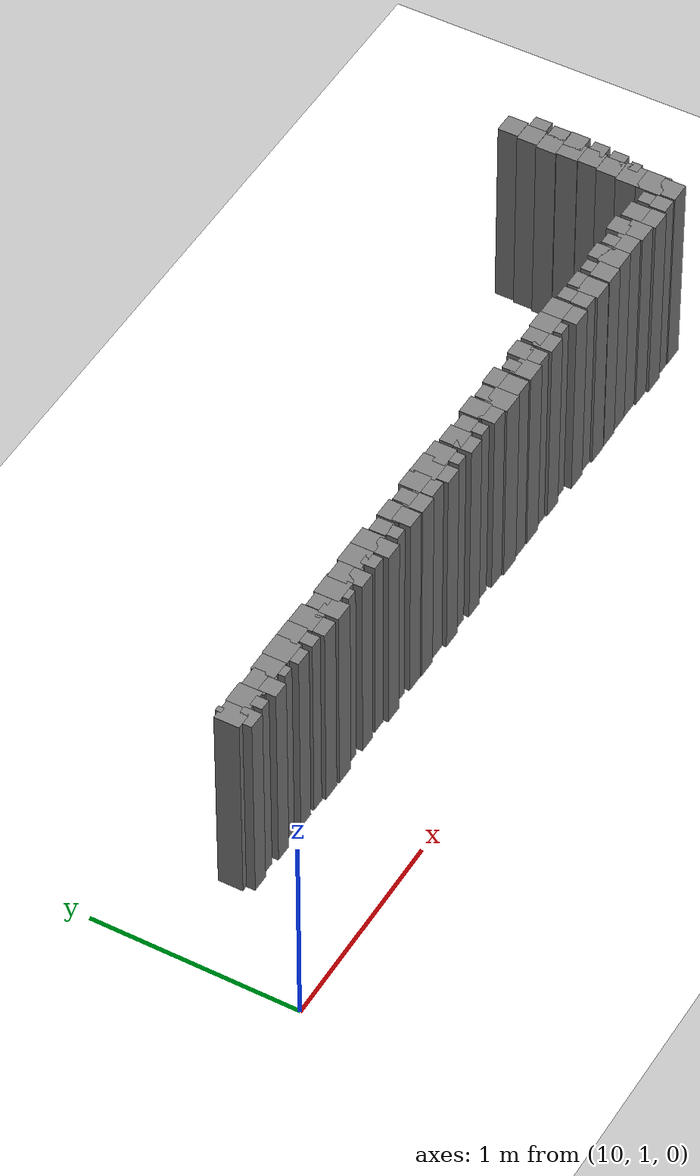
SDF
<sdf version="1.6">
 <world name="default">
  <model name="group_282">
   <pose>10.51 1.53 0.5 0 0 0</pose>
   <static>true</static>
   <link name="link">
    <collision name="collision">
     <geometry><box><size>0.0844207576746406 0.0844207576746406 1</size></box></geometry>
    </collision>
    <visual name="visual">
     <geometry><box><size>0.0844207576746406 0.0844207576746406 1</size></box></geometry>
     <material><ambient>0.5 0.5 0.5 1</ambient></material>
    </visual>
   </link>
  </model>
  <model name="group_283">
   <pose>10.50 1.59 0.5 0 0 0</pose>
   <static>true</static>
   <link name="link">
    <collision name="collision">
     <geometry><box><size>0.1188431077718544 0.1188431077718544 1</size></box></geometry>
    </collision>
    <visual name="visual">
     <geometry><box><size>0.1188431077718544 0.1188431077718544 1</size></box></geometry>
     <material><ambient>0.5 0.5 0.5 1</ambient></material>
    </visual>
   </link>
  </model>
  <model name="group_284">
   <pose>10.49 1.65 0.5 0 0 0</pose>
   <static>true</static>
   <link name="link">
    <collision name="collision">
     <geometry><box><size>0.02814025255821355 0.02814025255821355 1</size></box></geometry>
    </collision>
    <visual name="visual">
     <geometry><box><size>0.02814025255821355 0.02814025255821355 1</size></box></geometry>
     <material><ambient>0.5 0.5 0.5 1</ambient></material>
    </visual>
   </link>
  </model>
  <model name="group_287">
   <pose>10.60 1.60 0.5 0 0 0</pose>
   <static>true</static>
   <link name="link">
    <collision name="collision">
     <geometry><box><size>0.11145209213377257 0.11145209213377257 1</size></box></geometry>
    </collision>
    <visual name="visual">
     <geometry><box><size>0.11145209213377257 0.11145209213377257 1</size></box></geometry>
     <material><ambient>0.5 0.5 0.5 1</ambient></material>
    </visual>
   </link>
  </model>
  <model name="group_288">
   <pose>10.60 1.53 0.5 0 0 0</pose>
   <static>true</static>
   <link name="link">
    <collision name="collision">
     <geometry><box><size>0.05628050511642709 0.05628050511642709 1</size></box></geometry>
    </collision>
    <visual name="visual">
     <geometry><box><size>0.05628050511642709 0.05628050511642709 1</size></box></geometry>
     <material><ambient>0.5 0.5 0.5 1</ambient></material>
    </visual>
   </link>
  </model>
  <model name="group_291">
   <pose>10.70 1.53 0.5 0 0 0</pose>
   <static>true</static>
   <link name="link">
    <collision name="collision">
     <geometry><box><size>0.08442075767464413 0.08442075767464413 1</size></box></geometry>
    </collision>
    <visual name="visual">
     <geometry><box><size>0.08442075767464413 0.08442075767464413 1</size></box></geometry>
     <material><ambient>0.5 0.5 0.5 1</ambient></material>
    </visual>
   </link>
  </model>
  <model name="group_292">
   <pose>10.70 1.59 0.5 0 0 0</pose>
   <static>true</static>
   <link name="link">
    <collision name="collision">
     <geometry><box><size>0.11218382099302741 0.11218382099302741 1</size></box></geometry>
    </collision>
    <visual name="visual">
     <geometry><box><size>0.11218382099302741 0.11218382099302741 1</size></box></geometry>
     <material><ambient>0.5 0.5 0.5 1</ambient></material>
    </visual>
   </link>
  </model>
  <model name="group_295">
   <pose>10.80 1.60 0.5 0 0 0</pose>
   <static>true</static>
   <link name="link">
    <collision name="collision">
     <geometry><box><size>0.11218382099302664 0.11218382099302664 1</size></box></geometry>
    </collision>
    <visual name="visual">
     <geometry><box><size>0.11218382099302664 0.11218382099302664 1</size></box></geometry>
     <material><ambient>0.5 0.5 0.5 1</ambient></material>
    </visual>
   </link>
  </model>
  <model name="group_296">
   <pose>10.80 1.54 0.5 0 0 0</pose>
   <static>true</static>
   <link name="link">
    <collision name="collision">
     <geometry><box><size>0.0562805051164306 0.0562805051164306 1</size></box></geometry>
    </collision>
    <visual name="visual">
     <geometry><box><size>0.0562805051164306 0.0562805051164306 1</size></box></geometry>
     <material><ambient>0.5 0.5 0.5 1</ambient></material>
    </visual>
   </link>
  </model>
  <model name="group_300">
   <pose>10.90 1.54 0.5 0 0 0</pose>
   <static>true</static>
   <link name="link">
    <collision name="collision">
     <geometry><box><size>0.0844207576746406 0.0844207576746406 1</size></box></geometry>
    </collision>
    <visual name="visual">
     <geometry><box><size>0.0844207576746406 0.0844207576746406 1</size></box></geometry>
     <material><ambient>0.5 0.5 0.5 1</ambient></material>
    </visual>
   </link>
  </model>
  <model name="group_301">
   <pose>10.90 1.60 0.5 0 0 0</pose>
   <static>true</static>
   <link name="link">
    <collision name="collision">
     <geometry><box><size>0.11941295585761355 0.11941295585761355 1</size></box></geometry>
    </collision>
    <visual name="visual">
     <geometry><box><size>0.11941295585761355 0.11941295585761355 1</size></box></geometry>
     <material><ambient>0.5 0.5 0.5 1</ambient></material>
    </visual>
   </link>
  </model>
  <model name="group_305">
   <pose>11.00 1.53 0.5 0 0 0</pose>
   <static>true</static>
   <link name="link">
    <collision name="collision">
     <geometry><box><size>0.06413786030771713 0.06413786030771713 1</size></box></geometry>
    </collision>
    <visual name="visual">
     <geometry><box><size>0.06413786030771713 0.06413786030771713 1</size></box></geometry>
     <material><ambient>0.5 0.5 0.5 1</ambient></material>
    </visual>
   </link>
  </model>
  <model name="group_306">
   <pose>11.00 1.61 0.5 0 0 0</pose>
   <static>true</static>
   <link name="link">
    <collision name="collision">
     <geometry><box><size>0.09919226406567094 0.09919226406567094 1</size></box></geometry>
    </collision>
    <visual name="visual">
     <geometry><box><size>0.09919226406567094 0.09919226406567094 1</size></box></geometry>
     <material><ambient>0.5 0.5 0.5 1</ambient></material>
    </visual>
   </link>
  </model>
  <model name="group_309">
   <pose>11.09 1.53 0.5 0 0 0</pose>
   <static>true</static>
   <link name="link">
    <collision name="collision">
     <geometry><box><size>0.09070112511455711 0.09070112511455711 1</size></box></geometry>
    </collision>
    <visual name="visual">
     <geometry><box><size>0.09070112511455711 0.09070112511455711 1</size></box></geometry>
     <material><ambient>0.5 0.5 0.5 1</ambient></material>
    </visual>
   </link>
  </model>
  <model name="group_310">
   <pose>11.10 1.60 0.5 0 0 0</pose>
   <static>true</static>
   <link name="link">
    <collision name="collision">
     <geometry><box><size>0.11493900367021977 0.11493900367021977 1</size></box></geometry>
    </collision>
    <visual name="visual">
     <geometry><box><size>0.11493900367021977 0.11493900367021977 1</size></box></geometry>
     <material><ambient>0.5 0.5 0.5 1</ambient></material>
    </visual>
   </link>
  </model>
  <model name="group_313">
   <pose>11.20 1.53 0.5 0 0 0</pose>
   <static>true</static>
   <link name="link">
    <collision name="collision">
     <geometry><box><size>0.09657300224092963 0.09657300224092963 1</size></box></geometry>
    </collision>
    <visual name="visual">
     <geometry><box><size>0.09657300224092963 0.09657300224092963 1</size></box></geometry>
     <material><ambient>0.5 0.5 0.5 1</ambient></material>
    </visual>
   </link>
  </model>
  <model name="group_314">
   <pose>11.20 1.60 0.5 0 0 0</pose>
   <static>true</static>
   <link name="link">
    <collision name="collision">
     <geometry><box><size>0.07960863723840723 0.07960863723840723 1</size></box></geometry>
    </collision>
    <visual name="visual">
     <geometry><box><size>0.07960863723840723 0.07960863723840723 1</size></box></geometry>
     <material><ambient>0.5 0.5 0.5 1</ambient></material>
    </visual>
   </link>
  </model>
  <model name="group_317">
   <pose>11.30 1.59 0.5 0 0 0</pose>
   <static>true</static>
   <link name="link">
    <collision name="collision">
     <geometry><box><size>0.11941295585761384 0.11941295585761384 1</size></box></geometry>
    </collision>
    <visual name="visual">
     <geometry><box><size>0.11941295585761384 0.11941295585761384 1</size></box></geometry>
     <material><ambient>0.5 0.5 0.5 1</ambient></material>
    </visual>
   </link>
  </model>
  <model name="group_318">
   <pose>11.30 1.53 0.5 0 0 0</pose>
   <static>true</static>
   <link name="link">
    <collision name="collision">
     <geometry><box><size>0.05628050511642709 0.05628050511642709 1</size></box></geometry>
    </collision>
    <visual name="visual">
     <geometry><box><size>0.05628050511642709 0.05628050511642709 1</size></box></geometry>
     <material><ambient>0.5 0.5 0.5 1</ambient></material>
    </visual>
   </link>
  </model>
  <model name="group_321">
   <pose>11.40 1.53 0.5 0 0 0</pose>
   <static>true</static>
   <link name="link">
    <collision name="collision">
     <geometry><box><size>0.08442075767464416 0.08442075767464416 1</size></box></geometry>
    </collision>
    <visual name="visual">
     <geometry><box><size>0.08442075767464416 0.08442075767464416 1</size></box></geometry>
     <material><ambient>0.5 0.5 0.5 1</ambient></material>
    </visual>
   </link>
  </model>
  <model name="group_322">
   <pose>11.40 1.59 0.5 0 0 0</pose>
   <static>true</static>
   <link name="link">
    <collision name="collision">
     <geometry><box><size>0.11218382099302926 0.11218382099302926 1</size></box></geometry>
    </collision>
    <visual name="visual">
     <geometry><box><size>0.11218382099302926 0.11218382099302926 1</size></box></geometry>
     <material><ambient>0.5 0.5 0.5 1</ambient></material>
    </visual>
   </link>
  </model>
  <model name="group_325">
   <pose>11.50 1.60 0.5 0 0 0</pose>
   <static>true</static>
   <link name="link">
    <collision name="collision">
     <geometry><box><size>0.11218382099302819 0.11218382099302819 1</size></box></geometry>
    </collision>
    <visual name="visual">
     <geometry><box><size>0.11218382099302819 0.11218382099302819 1</size></box></geometry>
     <material><ambient>0.5 0.5 0.5 1</ambient></material>
    </visual>
   </link>
  </model>
  <model name="group_326">
   <pose>11.51 1.53 0.5 0 0 0</pose>
   <static>true</static>
   <link name="link">
    <collision name="collision">
     <geometry><box><size>0.07012024655144633 0.07012024655144633 1</size></box></geometry>
    </collision>
    <visual name="visual">
     <geometry><box><size>0.07012024655144633 0.07012024655144633 1</size></box></geometry>
     <material><ambient>0.5 0.5 0.5 1</ambient></material>
    </visual>
   </link>
  </model>
  <model name="group_330">
   <pose>11.60 1.52 0.5 0 0 0</pose>
   <static>true</static>
   <link name="link">
    <collision name="collision">
     <geometry><box><size>0.09070112511455346 0.09070112511455346 1</size></box></geometry>
    </collision>
    <visual name="visual">
     <geometry><box><size>0.09070112511455346 0.09070112511455346 1</size></box></geometry>
     <material><ambient>0.5 0.5 0.5 1</ambient></material>
    </visual>
   </link>
  </model>
  <model name="group_331">
   <pose>11.60 1.60 0.5 0 0 0</pose>
   <static>true</static>
   <link name="link">
    <collision name="collision">
     <geometry><box><size>0.11145209213376872 0.11145209213376872 1</size></box></geometry>
    </collision>
    <visual name="visual">
     <geometry><box><size>0.11145209213376872 0.11145209213376872 1</size></box></geometry>
     <material><ambient>0.5 0.5 0.5 1</ambient></material>
    </visual>
   </link>
  </model>
  <model name="group_334">
   <pose>11.70 1.53 0.5 0 0 0</pose>
   <static>true</static>
   <link name="link">
    <collision name="collision">
     <geometry><box><size>0.06413786030771981 0.06413786030771981 1</size></box></geometry>
    </collision>
    <visual name="visual">
     <geometry><box><size>0.06413786030771981 0.06413786030771981 1</size></box></geometry>
     <material><ambient>0.5 0.5 0.5 1</ambient></material>
    </visual>
   </link>
  </model>
  <model name="group_335">
   <pose>11.70 1.59 0.5 0 0 0</pose>
   <static>true</static>
   <link name="link">
    <collision name="collision">
     <geometry><box><size>0.07960863723840993 0.07960863723840993 1</size></box></geometry>
    </collision>
    <visual name="visual">
     <geometry><box><size>0.07960863723840993 0.07960863723840993 1</size></box></geometry>
     <material><ambient>0.5 0.5 0.5 1</ambient></material>
    </visual>
   </link>
  </model>
  <model name="group_338">
   <pose>11.80 1.53 0.5 0 0 0</pose>
   <static>true</static>
   <link name="link">
    <collision name="collision">
     <geometry><box><size>0.09070112511455033 0.09070112511455033 1</size></box></geometry>
    </collision>
    <visual name="visual">
     <geometry><box><size>0.09070112511455033 0.09070112511455033 1</size></box></geometry>
     <material><ambient>0.5 0.5 0.5 1</ambient></material>
    </visual>
   </link>
  </model>
  <model name="group_339">
   <pose>11.80 1.59 0.5 0 0 0</pose>
   <static>true</static>
   <link name="link">
    <collision name="collision">
     <geometry><box><size>0.10297681291020666 0.10297681291020666 1</size></box></geometry>
    </collision>
    <visual name="visual">
     <geometry><box><size>0.10297681291020666 0.10297681291020666 1</size></box></geometry>
     <material><ambient>0.5 0.5 0.5 1</ambient></material>
    </visual>
   </link>
  </model>
  <model name="group_342">
   <pose>11.90 1.53 0.5 0 0 0</pose>
   <static>true</static>
   <link name="link">
    <collision name="collision">
     <geometry><box><size>0.0965730022409327 0.0965730022409327 1</size></box></geometry>
    </collision>
    <visual name="visual">
     <geometry><box><size>0.0965730022409327 0.0965730022409327 1</size></box></geometry>
     <material><ambient>0.5 0.5 0.5 1</ambient></material>
    </visual>
   </link>
  </model>
  <model name="group_343">
   <pose>11.90 1.59 0.5 0 0 0</pose>
   <static>true</static>
   <link name="link">
    <collision name="collision">
     <geometry><box><size>0.07960863723840934 0.07960863723840934 1</size></box></geometry>
    </collision>
    <visual name="visual">
     <geometry><box><size>0.07960863723840934 0.07960863723840934 1</size></box></geometry>
     <material><ambient>0.5 0.5 0.5 1</ambient></material>
    </visual>
   </link>
  </model>
  <model name="group_346">
   <pose>12.00 1.54 0.5 0 0 0</pose>
   <static>true</static>
   <link name="link">
    <collision name="collision">
     <geometry><box><size>0.09657300224092946 0.09657300224092946 1</size></box></geometry>
    </collision>
    <visual name="visual">
     <geometry><box><size>0.09657300224092946 0.09657300224092946 1</size></box></geometry>
     <material><ambient>0.5 0.5 0.5 1</ambient></material>
    </visual>
   </link>
  </model>
  <model name="group_347">
   <pose>12.00 1.60 0.5 0 0 0</pose>
   <static>true</static>
   <link name="link">
    <collision name="collision">
     <geometry><box><size>0.10297681291020315 0.10297681291020315 1</size></box></geometry>
    </collision>
    <visual name="visual">
     <geometry><box><size>0.10297681291020315 0.10297681291020315 1</size></box></geometry>
     <material><ambient>0.5 0.5 0.5 1</ambient></material>
    </visual>
   </link>
  </model>
  <model name="group_351">
   <pose>12.10 1.52 0.5 0 0 0</pose>
   <static>true</static>
   <link name="link">
    <collision name="collision">
     <geometry><box><size>0.09398811657741322 0.09398811657741322 1</size></box></geometry>
    </collision>
    <visual name="visual">
     <geometry><box><size>0.09398811657741322 0.09398811657741322 1</size></box></geometry>
     <material><ambient>0.5 0.5 0.5 1</ambient></material>
    </visual>
   </link>
  </model>
  <model name="group_352">
   <pose>12.10 1.59 0.5 0 0 0</pose>
   <static>true</static>
   <link name="link">
    <collision name="collision">
     <geometry><box><size>0.12064594486191331 0.12064594486191331 1</size></box></geometry>
    </collision>
    <visual name="visual">
     <geometry><box><size>0.12064594486191331 0.12064594486191331 1</size></box></geometry>
     <material><ambient>0.5 0.5 0.5 1</ambient></material>
    </visual>
   </link>
  </model>
  <model name="group_355">
   <pose>12.19 1.59 0.5 0 0 0</pose>
   <static>true</static>
   <link name="link">
    <collision name="collision">
     <geometry><box><size>0.10946767640596061 0.10946767640596061 1</size></box></geometry>
    </collision>
    <visual name="visual">
     <geometry><box><size>0.10946767640596061 0.10946767640596061 1</size></box></geometry>
     <material><ambient>0.5 0.5 0.5 1</ambient></material>
    </visual>
   </link>
  </model>
  <model name="group_358">
   <pose>12.20 1.52 0.5 0 0 0</pose>
   <static>true</static>
   <link name="link">
    <collision name="collision">
     <geometry><box><size>0.06413786030771677 0.06413786030771677 1</size></box></geometry>
    </collision>
    <visual name="visual">
     <geometry><box><size>0.06413786030771677 0.06413786030771677 1</size></box></geometry>
     <material><ambient>0.5 0.5 0.5 1</ambient></material>
    </visual>
   </link>
  </model>
  <model name="group_359">
   <pose>12.30 1.52 0.5 0 0 0</pose>
   <static>true</static>
   <link name="link">
    <collision name="collision">
     <geometry><box><size>0.09070112511455033 0.09070112511455033 1</size></box></geometry>
    </collision>
    <visual name="visual">
     <geometry><box><size>0.09070112511455033 0.09070112511455033 1</size></box></geometry>
     <material><ambient>0.5 0.5 0.5 1</ambient></material>
    </visual>
   </link>
  </model>
  <model name="group_360">
   <pose>12.31 1.58 0.5 0 0 0</pose>
   <static>true</static>
   <link name="link">
    <collision name="collision">
     <geometry><box><size>0.10297681291020407 0.10297681291020407 1</size></box></geometry>
    </collision>
    <visual name="visual">
     <geometry><box><size>0.10297681291020407 0.10297681291020407 1</size></box></geometry>
     <material><ambient>0.5 0.5 0.5 1</ambient></material>
    </visual>
   </link>
  </model>
  <model name="group_365">
   <pose>12.40 1.52 0.5 0 0 0</pose>
   <static>true</static>
   <link name="link">
    <collision name="collision">
     <geometry><box><size>0.06413786030771962 0.06413786030771962 1</size></box></geometry>
    </collision>
    <visual name="visual">
     <geometry><box><size>0.06413786030771962 0.06413786030771962 1</size></box></geometry>
     <material><ambient>0.5 0.5 0.5 1</ambient></material>
    </visual>
   </link>
  </model>
  <model name="group_366">
   <pose>12.40 1.58 0.5 0 0 0</pose>
   <static>true</static>
   <link name="link">
    <collision name="collision">
     <geometry><box><size>0.07960863723840934 0.07960863723840934 1</size></box></geometry>
    </collision>
    <visual name="visual">
     <geometry><box><size>0.07960863723840934 0.07960863723840934 1</size></box></geometry>
     <material><ambient>0.5 0.5 0.5 1</ambient></material>
    </visual>
   </link>
  </model>
  <model name="group_367">
   <pose>12.50 1.52 0.5 0 0 0</pose>
   <static>true</static>
   <link name="link">
    <collision name="collision">
     <geometry><box><size>0.09070112511455047 0.09070112511455047 1</size></box></geometry>
    </collision>
    <visual name="visual">
     <geometry><box><size>0.09070112511455047 0.09070112511455047 1</size></box></geometry>
     <material><ambient>0.5 0.5 0.5 1</ambient></material>
    </visual>
   </link>
  </model>
  <model name="group_368">
   <pose>12.50 1.59 0.5 0 0 0</pose>
   <static>true</static>
   <link name="link">
    <collision name="collision">
     <geometry><box><size>0.10297681291020125 0.10297681291020125 1</size></box></geometry>
    </collision>
    <visual name="visual">
     <geometry><box><size>0.10297681291020125 0.10297681291020125 1</size></box></geometry>
     <material><ambient>0.5 0.5 0.5 1</ambient></material>
    </visual>
   </link>
  </model>
  <model name="group_374">
   <pose>12.60 1.52 0.5 0 0 0</pose>
   <static>true</static>
   <link name="link">
    <collision name="collision">
     <geometry><box><size>0.11035431435957836 0.11035431435957836 1</size></box></geometry>
    </collision>
    <visual name="visual">
     <geometry><box><size>0.11035431435957836 0.11035431435957836 1</size></box></geometry>
     <material><ambient>0.5 0.5 0.5 1</ambient></material>
    </visual>
   </link>
  </model>
  <model name="group_375">
   <pose>12.60 1.59 0.5 0 0 0</pose>
   <static>true</static>
   <link name="link">
    <collision name="collision">
     <geometry><box><size>0.0796086372384084 0.0796086372384084 1</size></box></geometry>
    </collision>
    <visual name="visual">
     <geometry><box><size>0.0796086372384084 0.0796086372384084 1</size></box></geometry>
     <material><ambient>0.5 0.5 0.5 1</ambient></material>
    </visual>
   </link>
  </model>
  <model name="group_376">
   <pose>12.70 1.52 0.5 0 0 0</pose>
   <static>true</static>
   <link name="link">
    <collision name="collision">
     <geometry><box><size>0.09838251202874101 0.09838251202874101 1</size></box></geometry>
    </collision>
    <visual name="visual">
     <geometry><box><size>0.09838251202874101 0.09838251202874101 1</size></box></geometry>
     <material><ambient>0.5 0.5 0.5 1</ambient></material>
    </visual>
   </link>
  </model>
  <model name="group_377">
   <pose>12.70 1.59 0.5 0 0 0</pose>
   <static>true</static>
   <link name="link">
    <collision name="collision">
     <geometry><box><size>0.10297681291020101 0.10297681291020101 1</size></box></geometry>
    </collision>
    <visual name="visual">
     <geometry><box><size>0.10297681291020101 0.10297681291020101 1</size></box></geometry>
     <material><ambient>0.5 0.5 0.5 1</ambient></material>
    </visual>
   </link>
  </model>
  <model name="group_382">
   <pose>12.81 1.52 0.5 0 0 0</pose>
   <static>true</static>
   <link name="link">
    <collision name="collision">
     <geometry><box><size>0.10297681291020644 0.10297681291020644 1</size></box></geometry>
    </collision>
    <visual name="visual">
     <geometry><box><size>0.10297681291020644 0.10297681291020644 1</size></box></geometry>
     <material><ambient>0.5 0.5 0.5 1</ambient></material>
    </visual>
   </link>
  </model>
  <model name="group_383">
   <pose>12.80 1.58 0.5 0 0 0</pose>
   <static>true</static>
   <link name="link">
    <collision name="collision">
     <geometry><box><size>0.06413786030771658 0.06413786030771658 1</size></box></geometry>
    </collision>
    <visual name="visual">
     <geometry><box><size>0.06413786030771658 0.06413786030771658 1</size></box></geometry>
     <material><ambient>0.5 0.5 0.5 1</ambient></material>
    </visual>
   </link>
  </model>
  <model name="group_384">
   <pose>12.90 1.59 0.5 0 0 0</pose>
   <static>true</static>
   <link name="link">
    <collision name="collision">
     <geometry><box><size>0.09070112511455075 0.09070112511455075 1</size></box></geometry>
    </collision>
    <visual name="visual">
     <geometry><box><size>0.09070112511455075 0.09070112511455075 1</size></box></geometry>
     <material><ambient>0.5 0.5 0.5 1</ambient></material>
    </visual>
   </link>
  </model>
  <model name="group_387">
   <pose>12.90 1.52 0.5 0 0 0</pose>
   <static>true</static>
   <link name="link">
    <collision name="collision">
     <geometry><box><size>0.07960863723841022 0.07960863723841022 1</size></box></geometry>
    </collision>
    <visual name="visual">
     <geometry><box><size>0.07960863723841022 0.07960863723841022 1</size></box></geometry>
     <material><ambient>0.5 0.5 0.5 1</ambient></material>
    </visual>
   </link>
  </model>
  <model name="group_390">
   <pose>13.00 1.52 0.5 0 0 0</pose>
   <static>true</static>
   <link name="link">
    <collision name="collision">
     <geometry><box><size>0.09707727718031758 0.09707727718031758 1</size></box></geometry>
    </collision>
    <visual name="visual">
     <geometry><box><size>0.09707727718031758 0.09707727718031758 1</size></box></geometry>
     <material><ambient>0.5 0.5 0.5 1</ambient></material>
    </visual>
   </link>
  </model>
  <model name="group_391">
   <pose>13.01 1.58 0.5 0 0 0</pose>
   <static>true</static>
   <link name="link">
    <collision name="collision">
     <geometry><box><size>0.09359650192837145 0.09359650192837145 1</size></box></geometry>
    </collision>
    <visual name="visual">
     <geometry><box><size>0.09359650192837145 0.09359650192837145 1</size></box></geometry>
     <material><ambient>0.5 0.5 0.5 1</ambient></material>
    </visual>
   </link>
  </model>
  <model name="group_392">
   <pose>13.10 1.58 0.5 0 0 0</pose>
   <static>true</static>
   <link name="link">
    <collision name="collision">
     <geometry><box><size>0.10647461046977892 0.10647461046977892 1</size></box></geometry>
    </collision>
    <visual name="visual">
     <geometry><box><size>0.10647461046977892 0.10647461046977892 1</size></box></geometry>
     <material><ambient>0.5 0.5 0.5 1</ambient></material>
    </visual>
   </link>
  </model>
  <model name="group_395">
   <pose>13.10 1.52 0.5 0 0 0</pose>
   <static>true</static>
   <link name="link">
    <collision name="collision">
     <geometry><box><size>0.06413786030772321 0.06413786030772321 1</size></box></geometry>
    </collision>
    <visual name="visual">
     <geometry><box><size>0.06413786030772321 0.06413786030772321 1</size></box></geometry>
     <material><ambient>0.5 0.5 0.5 1</ambient></material>
    </visual>
   </link>
  </model>
  <model name="group_399">
   <pose>13.20 1.51 0.5 0 0 0</pose>
   <static>true</static>
   <link name="link">
    <collision name="collision">
     <geometry><box><size>0.09976776828770342 0.09976776828770342 1</size></box></geometry>
    </collision>
    <visual name="visual">
     <geometry><box><size>0.09976776828770342 0.09976776828770342 1</size></box></geometry>
     <material><ambient>0.5 0.5 0.5 1</ambient></material>
    </visual>
   </link>
  </model>
  <model name="group_400">
   <pose>13.20 1.58 0.5 0 0 0</pose>
   <static>true</static>
   <link name="link">
    <collision name="collision">
     <geometry><box><size>0.10297681291020644 0.10297681291020644 1</size></box></geometry>
    </collision>
    <visual name="visual">
     <geometry><box><size>0.10297681291020644 0.10297681291020644 1</size></box></geometry>
     <material><ambient>0.5 0.5 0.5 1</ambient></material>
    </visual>
   </link>
  </model>
  <model name="group_404">
   <pose>13.30 1.51 0.5 0 0 0</pose>
   <static>true</static>
   <link name="link">
    <collision name="collision">
     <geometry><box><size>0.07960863723841291 0.07960863723841291 1</size></box></geometry>
    </collision>
    <visual name="visual">
     <geometry><box><size>0.07960863723841291 0.07960863723841291 1</size></box></geometry>
     <material><ambient>0.5 0.5 0.5 1</ambient></material>
    </visual>
   </link>
  </model>
  <model name="group_405">
   <pose>13.30 1.58 0.5 0 0 0</pose>
   <static>true</static>
   <link name="link">
    <collision name="collision">
     <geometry><box><size>0.07321409456274304 0.07321409456274304 1</size></box></geometry>
    </collision>
    <visual name="visual">
     <geometry><box><size>0.07321409456274304 0.07321409456274304 1</size></box></geometry>
     <material><ambient>0.5 0.5 0.5 1</ambient></material>
    </visual>
   </link>
  </model>
  <model name="group_408">
   <pose>13.39 1.51 0.5 0 0 0</pose>
   <static>true</static>
   <link name="link">
    <collision name="collision">
     <geometry><box><size>0.10297681291020666 0.10297681291020666 1</size></box></geometry>
    </collision>
    <visual name="visual">
     <geometry><box><size>0.10297681291020666 0.10297681291020666 1</size></box></geometry>
     <material><ambient>0.5 0.5 0.5 1</ambient></material>
    </visual>
   </link>
  </model>
  <model name="group_409">
   <pose>13.40 1.57 0.5 0 0 0</pose>
   <static>true</static>
   <link name="link">
    <collision name="collision">
     <geometry><box><size>0.09070112511455725 0.09070112511455725 1</size></box></geometry>
    </collision>
    <visual name="visual">
     <geometry><box><size>0.09070112511455725 0.09070112511455725 1</size></box></geometry>
     <material><ambient>0.5 0.5 0.5 1</ambient></material>
    </visual>
   </link>
  </model>
  <model name="group_412">
   <pose>13.50 1.51 0.5 0 0 0</pose>
   <static>true</static>
   <link name="link">
    <collision name="collision">
     <geometry><box><size>0.09838251202874401 0.09838251202874401 1</size></box></geometry>
    </collision>
    <visual name="visual">
     <geometry><box><size>0.09838251202874401 0.09838251202874401 1</size></box></geometry>
     <material><ambient>0.5 0.5 0.5 1</ambient></material>
    </visual>
   </link>
  </model>
  <model name="group_413">
   <pose>13.50 1.58 0.5 0 0 0</pose>
   <static>true</static>
   <link name="link">
    <collision name="collision">
     <geometry><box><size>0.06413786030771981 0.06413786030771981 1</size></box></geometry>
    </collision>
    <visual name="visual">
     <geometry><box><size>0.06413786030771981 0.06413786030771981 1</size></box></geometry>
     <material><ambient>0.5 0.5 0.5 1</ambient></material>
    </visual>
   </link>
  </model>
  <model name="group_415">
   <pose>13.60 1.52 0.5 0 0 0</pose>
   <static>true</static>
   <link name="link">
    <collision name="collision">
     <geometry><box><size>0.10647461046978869 0.10647461046978869 1</size></box></geometry>
    </collision>
    <visual name="visual">
     <geometry><box><size>0.10647461046978869 0.10647461046978869 1</size></box></geometry>
     <material><ambient>0.5 0.5 0.5 1</ambient></material>
    </visual>
   </link>
  </model>
  <model name="group_416">
   <pose>13.60 1.58 0.5 0 0 0</pose>
   <static>true</static>
   <link name="link">
    <collision name="collision">
     <geometry><box><size>0.09070112511455684 0.09070112511455684 1</size></box></geometry>
    </collision>
    <visual name="visual">
     <geometry><box><size>0.09070112511455684 0.09070112511455684 1</size></box></geometry>
     <material><ambient>0.5 0.5 0.5 1</ambient></material>
    </visual>
   </link>
  </model>
  <model name="group_422">
   <pose>13.70 1.52 0.5 0 0 0</pose>
   <static>true</static>
   <link name="link">
    <collision name="collision">
     <geometry><box><size>0.10297681291020033 0.10297681291020033 1</size></box></geometry>
    </collision>
    <visual name="visual">
     <geometry><box><size>0.10297681291020033 0.10297681291020033 1</size></box></geometry>
     <material><ambient>0.5 0.5 0.5 1</ambient></material>
    </visual>
   </link>
  </model>
  <model name="group_423">
   <pose>13.69 1.58 0.5 0 0 0</pose>
   <static>true</static>
   <link name="link">
    <collision name="collision">
     <geometry><box><size>0.06413786030771962 0.06413786030771962 1</size></box></geometry>
    </collision>
    <visual name="visual">
     <geometry><box><size>0.06413786030771962 0.06413786030771962 1</size></box></geometry>
     <material><ambient>0.5 0.5 0.5 1</ambient></material>
    </visual>
   </link>
  </model>
  <model name="group_435">
   <pose>13.79 1.59 0.5 0 0 0</pose>
   <static>true</static>
   <link name="link">
    <collision name="collision">
     <geometry><box><size>0.09070112511455033 0.09070112511455033 1</size></box></geometry>
    </collision>
    <visual name="visual">
     <geometry><box><size>0.09070112511455033 0.09070112511455033 1</size></box></geometry>
     <material><ambient>0.5 0.5 0.5 1</ambient></material>
    </visual>
   </link>
  </model>
  <model name="group_447">
   <pose>13.80 1.51 0.5 0 0 0</pose>
   <static>true</static>
   <link name="link">
    <collision name="collision">
     <geometry><box><size>0.09919226406566614 0.09919226406566614 1</size></box></geometry>
    </collision>
    <visual name="visual">
     <geometry><box><size>0.09919226406566614 0.09919226406566614 1</size></box></geometry>
     <material><ambient>0.5 0.5 0.5 1</ambient></material>
    </visual>
   </link>
  </model>
  <model name="group_489">
   <pose>13.90 1.50 0.5 0 0 0</pose>
   <static>true</static>
   <link name="link">
    <collision name="collision">
     <geometry><box><size>0.10297681291020033 0.10297681291020033 1</size></box></geometry>
    </collision>
    <visual name="visual">
     <geometry><box><size>0.10297681291020033 0.10297681291020033 1</size></box></geometry>
     <material><ambient>0.5 0.5 0.5 1</ambient></material>
    </visual>
   </link>
  </model>
  <model name="group_490">
   <pose>13.90 1.57 0.5 0 0 0</pose>
   <static>true</static>
   <link name="link">
    <collision name="collision">
     <geometry><box><size>0.09707727718031062 0.09707727718031062 1</size></box></geometry>
    </collision>
    <visual name="visual">
     <geometry><box><size>0.09707727718031062 0.09707727718031062 1</size></box></geometry>
     <material><ambient>0.5 0.5 0.5 1</ambient></material>
    </visual>
   </link>
  </model>
  <model name="group_532">
   <pose>14.00 1.50 0.5 0 0 0</pose>
   <static>true</static>
   <link name="link">
    <collision name="collision">
     <geometry><box><size>0.07960863723840665 0.07960863723840665 1</size></box></geometry>
    </collision>
    <visual name="visual">
     <geometry><box><size>0.07960863723840665 0.07960863723840665 1</size></box></geometry>
     <material><ambient>0.5 0.5 0.5 1</ambient></material>
    </visual>
   </link>
  </model>
  <model name="group_533">
   <pose>14.00 1.57 0.5 0 0 0</pose>
   <static>true</static>
   <link name="link">
    <collision name="collision">
     <geometry><box><size>0.0641378603077164 0.0641378603077164 1</size></box></geometry>
    </collision>
    <visual name="visual">
     <geometry><box><size>0.0641378603077164 0.0641378603077164 1</size></box></geometry>
     <material><ambient>0.5 0.5 0.5 1</ambient></material>
    </visual>
   </link>
  </model>
  <model name="group_565">
   <pose>14.11 2.00 0.5 0 0 0</pose>
   <static>true</static>
   <link name="link">
    <collision name="collision">
     <geometry><box><size>0.10720809573338444 0.10720809573338444 1</size></box></geometry>
    </collision>
    <visual name="visual">
     <geometry><box><size>0.10720809573338444 0.10720809573338444 1</size></box></geometry>
     <material><ambient>0.5 0.5 0.5 1</ambient></material>
    </visual>
   </link>
  </model>
  <model name="group_566">
   <pose>14.10 2.10 0.5 0 0 0</pose>
   <static>true</static>
   <link name="link">
    <collision name="collision">
     <geometry><box><size>0.09919226406566957 0.09919226406566957 1</size></box></geometry>
    </collision>
    <visual name="visual">
     <geometry><box><size>0.09919226406566957 0.09919226406566957 1</size></box></geometry>
     <material><ambient>0.5 0.5 0.5 1</ambient></material>
    </visual>
   </link>
  </model>
  <model name="group_567">
   <pose>14.11 2.20 0.5 0 0 0</pose>
   <static>true</static>
   <link name="link">
    <collision name="collision">
     <geometry><box><size>0.09919226406567025 0.09919226406567025 1</size></box></geometry>
    </collision>
    <visual name="visual">
     <geometry><box><size>0.09919226406567025 0.09919226406567025 1</size></box></geometry>
     <material><ambient>0.5 0.5 0.5 1</ambient></material>
    </visual>
   </link>
  </model>
  <model name="group_568">
   <pose>14.12 2.30 0.5 0 0 0</pose>
   <static>true</static>
   <link name="link">
    <collision name="collision">
     <geometry><box><size>0.09919226406567248 0.09919226406567248 1</size></box></geometry>
    </collision>
    <visual name="visual">
     <geometry><box><size>0.09919226406567248 0.09919226406567248 1</size></box></geometry>
     <material><ambient>0.5 0.5 0.5 1</ambient></material>
    </visual>
   </link>
  </model>
  <model name="group_583">
   <pose>14.10 1.51 0.5 0 0 0</pose>
   <static>true</static>
   <link name="link">
    <collision name="collision">
     <geometry><box><size>0.10297681291020552 0.10297681291020552 1</size></box></geometry>
    </collision>
    <visual name="visual">
     <geometry><box><size>0.10297681291020552 0.10297681291020552 1</size></box></geometry>
     <material><ambient>0.5 0.5 0.5 1</ambient></material>
    </visual>
   </link>
  </model>
  <model name="group_584">
   <pose>14.10 1.59 0.5 0 0 0</pose>
   <static>true</static>
   <link name="link">
    <collision name="collision">
     <geometry><box><size>0.11941295585761624 0.11941295585761624 1</size></box></geometry>
    </collision>
    <visual name="visual">
     <geometry><box><size>0.11941295585761624 0.11941295585761624 1</size></box></geometry>
     <material><ambient>0.5 0.5 0.5 1</ambient></material>
    </visual>
   </link>
  </model>
  <model name="group_585">
   <pose>14.10 1.69 0.5 0 0 0</pose>
   <static>true</static>
   <link name="link">
    <collision name="collision">
     <geometry><box><size>0.1188431077718539 0.1188431077718539 1</size></box></geometry>
    </collision>
    <visual name="visual">
     <geometry><box><size>0.1188431077718539 0.1188431077718539 1</size></box></geometry>
     <material><ambient>0.5 0.5 0.5 1</ambient></material>
    </visual>
   </link>
  </model>
  <model name="group_586">
   <pose>14.10 1.80 0.5 0 0 0</pose>
   <static>true</static>
   <link name="link">
    <collision name="collision">
     <geometry><box><size>0.09919226406566733 0.09919226406566733 1</size></box></geometry>
    </collision>
    <visual name="visual">
     <geometry><box><size>0.09919226406566733 0.09919226406566733 1</size></box></geometry>
     <material><ambient>0.5 0.5 0.5 1</ambient></material>
    </visual>
   </link>
  </model>
  <model name="group_587">
   <pose>14.11 1.90 0.5 0 0 0</pose>
   <static>true</static>
   <link name="link">
    <collision name="collision">
     <geometry><box><size>0.0991922640656699 0.0991922640656699 1</size></box></geometry>
    </collision>
    <visual name="visual">
     <geometry><box><size>0.0991922640656699 0.0991922640656699 1</size></box></geometry>
     <material><ambient>0.5 0.5 0.5 1</ambient></material>
    </visual>
   </link>
  </model>
  <model name="group_603">
   <pose>14.17 2.01 0.5 0 0 0</pose>
   <static>true</static>
   <link name="link">
    <collision name="collision">
     <geometry><box><size>0.09047058300888536 0.09047058300888536 1</size></box></geometry>
    </collision>
    <visual name="visual">
     <geometry><box><size>0.09047058300888536 0.09047058300888536 1</size></box></geometry>
     <material><ambient>0.5 0.5 0.5 1</ambient></material>
    </visual>
   </link>
  </model>
  <model name="group_604">
   <pose>14.17 2.10 0.5 0 0 0</pose>
   <static>true</static>
   <link name="link">
    <collision name="collision">
     <geometry><box><size>0.08368096618929591 0.08368096618929591 1</size></box></geometry>
    </collision>
    <visual name="visual">
     <geometry><box><size>0.08368096618929591 0.08368096618929591 1</size></box></geometry>
     <material><ambient>0.5 0.5 0.5 1</ambient></material>
    </visual>
   </link>
  </model>
  <model name="group_605">
   <pose>14.18 2.20 0.5 0 0 0</pose>
   <static>true</static>
   <link name="link">
    <collision name="collision">
     <geometry><box><size>0.08368096618929446 0.08368096618929446 1</size></box></geometry>
    </collision>
    <visual name="visual">
     <geometry><box><size>0.08368096618929446 0.08368096618929446 1</size></box></geometry>
     <material><ambient>0.5 0.5 0.5 1</ambient></material>
    </visual>
   </link>
  </model>
  <model name="group_611">
   <pose>14.15 1.71 0.5 0 0 0</pose>
   <static>true</static>
   <link name="link">
    <collision name="collision">
     <geometry><box><size>0.05055096694252757 0.05055096694252757 1</size></box></geometry>
    </collision>
    <visual name="visual">
     <geometry><box><size>0.05055096694252757 0.05055096694252757 1</size></box></geometry>
     <material><ambient>0.5 0.5 0.5 1</ambient></material>
    </visual>
   </link>
  </model>
  <model name="group_612">
   <pose>14.16 1.80 0.5 0 0 0</pose>
   <static>true</static>
   <link name="link">
    <collision name="collision">
     <geometry><box><size>0.07582645041379013 0.07582645041379013 1</size></box></geometry>
    </collision>
    <visual name="visual">
     <geometry><box><size>0.07582645041379013 0.07582645041379013 1</size></box></geometry>
     <material><ambient>0.5 0.5 0.5 1</ambient></material>
    </visual>
   </link>
  </model>
  <model name="group_613">
   <pose>14.17 1.90 0.5 0 0 0</pose>
   <static>true</static>
   <link name="link">
    <collision name="collision">
     <geometry><box><size>0.07582645041379013 0.07582645041379013 1</size></box></geometry>
    </collision>
    <visual name="visual">
     <geometry><box><size>0.07582645041379013 0.07582645041379013 1</size></box></geometry>
     <material><ambient>0.5 0.5 0.5 1</ambient></material>
    </visual>
   </link>
  </model>
  <model name="ground_plane">
   <static>true</static>
   <link name="link">
    <collision name="collision">
     <geometry><plane><normal>0 0 1</normal><size>100 100</size></plane></geometry>
    </collision>
    <visual name="visual">
     <geometry><plane><normal>0 0 1</normal><size>100 100</size></plane></geometry>
     <material><ambient>1 1 1 1</ambient></material>
    </visual>
   </link>
  </model>
 </world>
</sdf>
